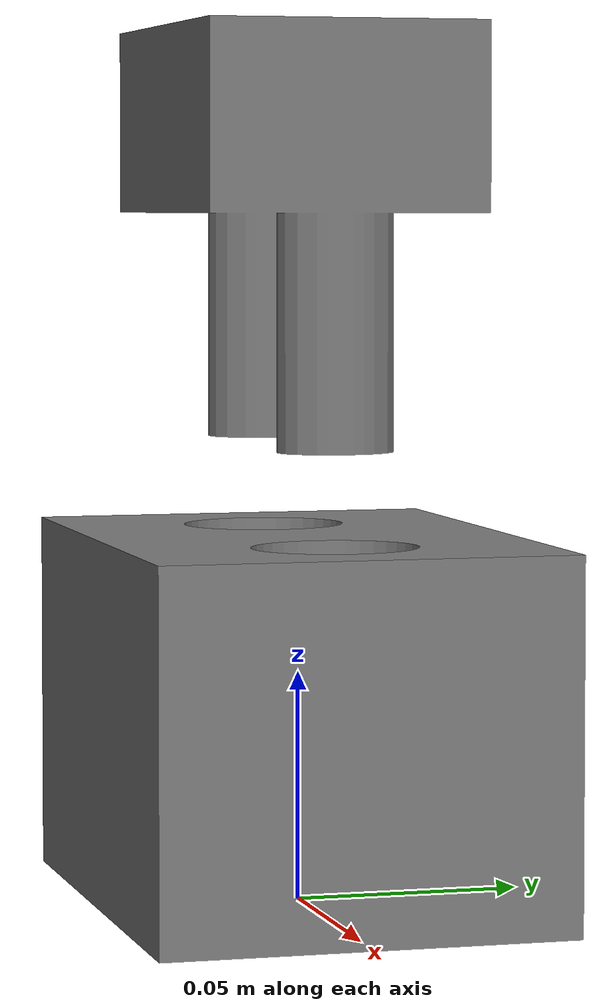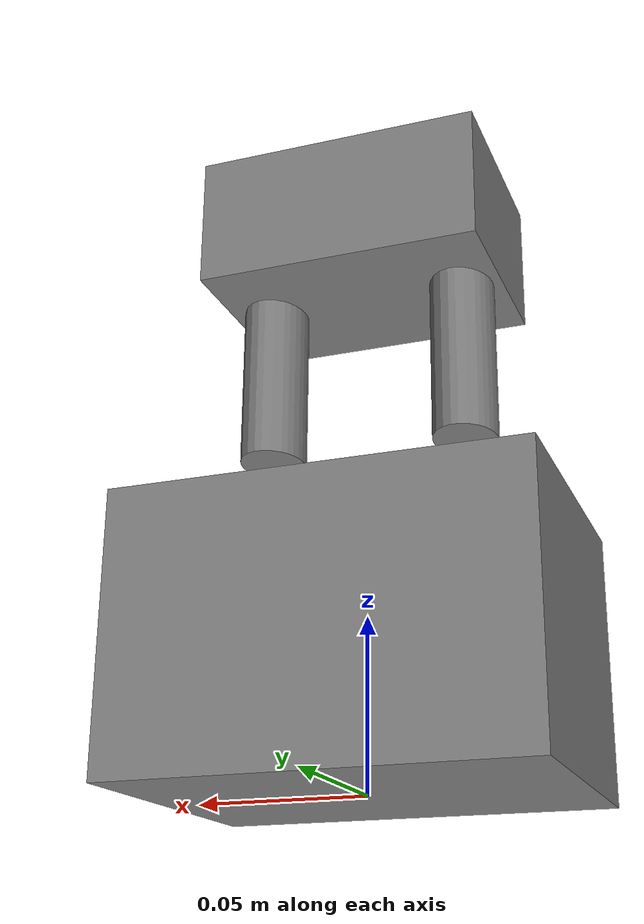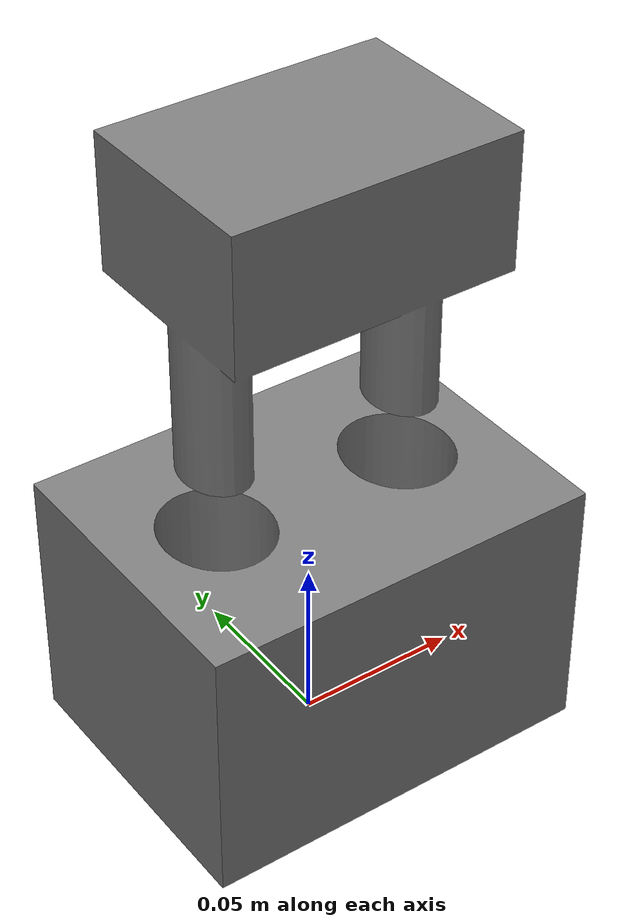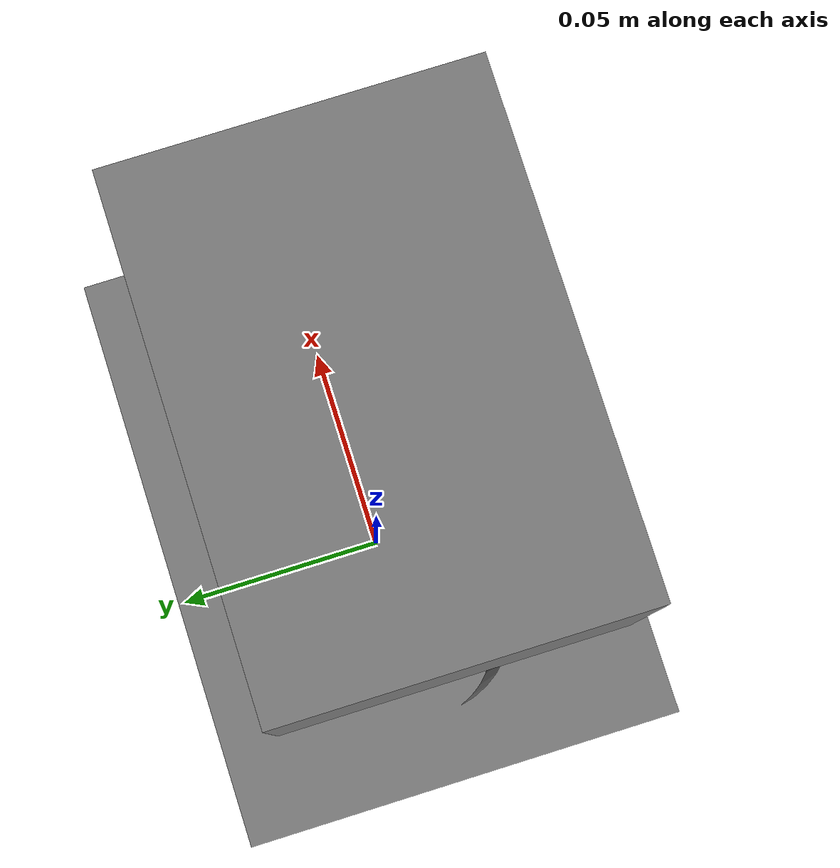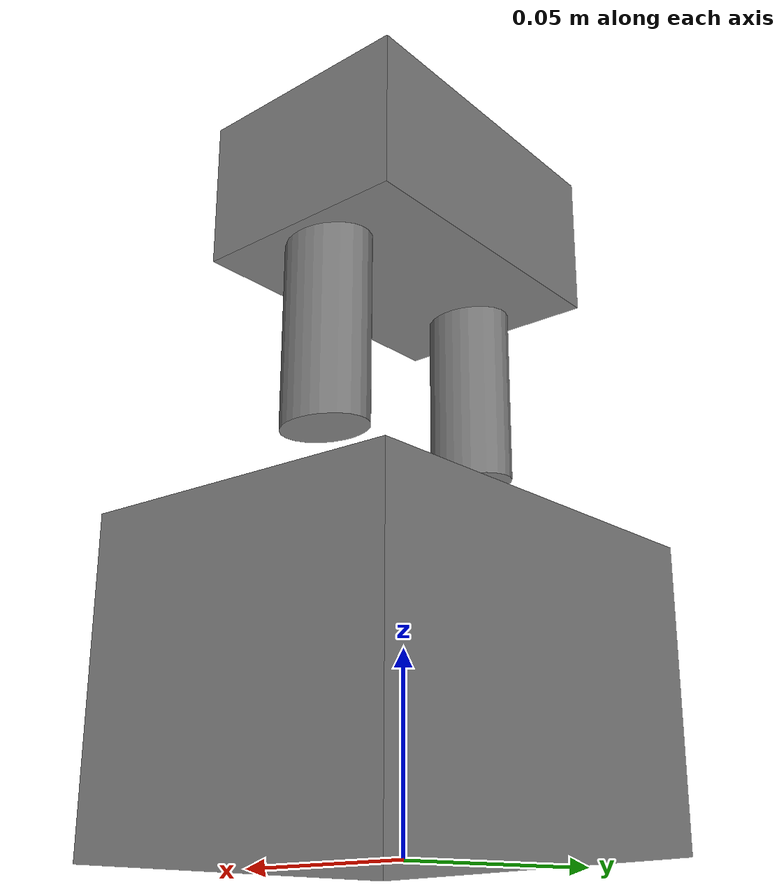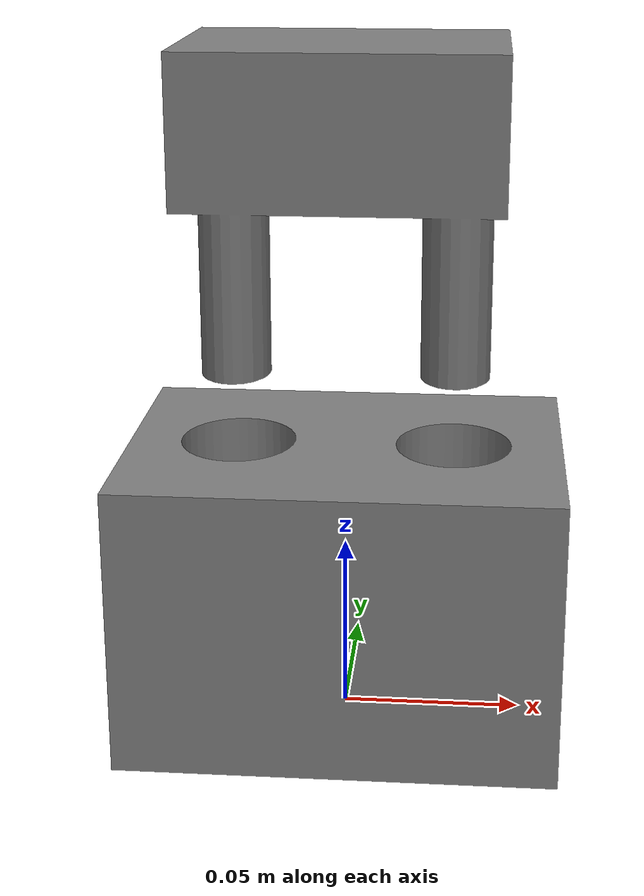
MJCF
<mujoco model="ellipse36">
  <default>
    <default class="visual">
      <geom group="2" type="mesh" contype="0" conaffinity="0"/>
    </default>
    <default class="collision">
      <geom group="3" type="mesh"/>
    </default>
  </default>
  <asset>
    <mesh file="ellipse36.obj"/>
    <mesh file="ellipse36_collision_0.obj"/>
    <mesh file="ellipse36_collision_1.obj"/>
    <mesh file="ellipse36_collision_2.obj"/>
    <mesh file="ellipse36_collision_3.obj"/>
    <mesh file="ellipse36_collision_4.obj"/>
    <mesh file="ellipse36_collision_5.obj"/>
    <mesh file="ellipse36_collision_6.obj"/>
    <mesh file="ellipse36_collision_7.obj"/>
    <mesh file="ellipse36_collision_8.obj"/>
    <mesh file="ellipse36_collision_9.obj"/>
    <mesh file="ellipse36_collision_10.obj"/>
    <mesh file="ellipse36_collision_11.obj"/>
    <mesh file="ellipse36_collision_12.obj"/>
    <mesh file="ellipse36_collision_13.obj"/>
    <mesh file="ellipse36_collision_14.obj"/>
    <mesh file="ellipse36_collision_15.obj"/>
    <mesh file="ellipse36_collision_16.obj"/>
    <mesh file="ellipse36_collision_17.obj"/>
    <mesh file="ellipse36_collision_18.obj"/>
    <mesh file="ellipse36_collision_19.obj"/>
    <mesh file="ellipse36_collision_20.obj"/>
    <mesh file="ellipse36_collision_21.obj"/>
    <mesh file="ellipse36_collision_22.obj"/>
    <mesh file="ellipse36_collision_23.obj"/>
    <mesh file="ellipse36_collision_24.obj"/>
    <mesh file="ellipse36_collision_25.obj"/>
    <mesh file="ellipse36_collision_26.obj"/>
    <mesh file="ellipse36_collision_27.obj"/>
    <mesh file="ellipse36_collision_28.obj"/>
    <mesh file="ellipse36_collision_29.obj"/>
    <mesh file="ellipse36_collision_30.obj"/>
    <mesh file="ellipse36_collision_31.obj"/>
    <mesh file="peg_ellipse36.obj"/>
    <mesh file="peg_ellipse36_collision_0.obj"/>
    <mesh file="peg_ellipse36_collision_1.obj"/>
    <mesh file="peg_ellipse36_collision_2.obj"/>
    <mesh file="peg_ellipse36_collision_3.obj"/>
    <mesh file="peg_ellipse36_collision_4.obj"/>
    <mesh file="peg_ellipse36_collision_5.obj"/>
    <mesh file="peg_ellipse36_collision_6.obj"/>
    <mesh file="peg_ellipse36_collision_7.obj"/>
    <mesh file="peg_ellipse36_collision_8.obj"/>
    <mesh file="peg_ellipse36_collision_9.obj"/>
    <mesh file="peg_ellipse36_collision_10.obj"/>
    <mesh file="peg_ellipse36_collision_11.obj"/>
    <mesh file="peg_ellipse36_collision_12.obj"/>
    <mesh file="peg_ellipse36_collision_13.obj"/>
    <mesh file="peg_ellipse36_collision_14.obj"/>
    <mesh file="peg_ellipse36_collision_15.obj"/>
    <mesh file="peg_ellipse36_collision_16.obj"/>
    <mesh file="peg_ellipse36_collision_17.obj"/>
    <mesh file="peg_ellipse36_collision_18.obj"/>
    <mesh file="peg_ellipse36_collision_19.obj"/>
    <mesh file="peg_ellipse36_collision_20.obj"/>
    <mesh file="peg_ellipse36_collision_21.obj"/>
    <mesh file="peg_ellipse36_collision_22.obj"/>
    <mesh file="peg_ellipse36_collision_23.obj"/>
    <mesh file="peg_ellipse36_collision_24.obj"/>
    <mesh file="peg_ellipse36_collision_25.obj"/>
    <mesh file="peg_ellipse36_collision_26.obj"/>
    <mesh file="peg_ellipse36_collision_27.obj"/>
    <mesh file="peg_ellipse36_collision_28.obj"/>
    <mesh file="peg_ellipse36_collision_29.obj"/>
    <mesh file="peg_ellipse36_collision_30.obj"/>
    <mesh file="peg_ellipse36_collision_31.obj"/>
  </asset>
  <worldbody>
    <body name="ellipse36" quat="0.707107 0.707107 0 0">
      <geom mesh="ellipse36" class="visual"/>
      <geom mesh="ellipse36_collision_0" class="collision"/>
      <geom mesh="ellipse36_collision_1" class="collision"/>
      <geom mesh="ellipse36_collision_2" class="collision"/>
      <geom mesh="ellipse36_collision_3" class="collision"/>
      <geom mesh="ellipse36_collision_4" class="collision"/>
      <geom mesh="ellipse36_collision_5" class="collision"/>
      <geom mesh="ellipse36_collision_6" class="collision"/>
      <geom mesh="ellipse36_collision_7" class="collision"/>
      <geom mesh="ellipse36_collision_8" class="collision"/>
      <geom mesh="ellipse36_collision_9" class="collision"/>
      <geom mesh="ellipse36_collision_10" class="collision"/>
      <geom mesh="ellipse36_collision_11" class="collision"/>
      <geom mesh="ellipse36_collision_12" class="collision"/>
      <geom mesh="ellipse36_collision_13" class="collision"/>
      <geom mesh="ellipse36_collision_14" class="collision"/>
      <geom mesh="ellipse36_collision_15" class="collision"/>
      <geom mesh="ellipse36_collision_16" class="collision"/>
      <geom mesh="ellipse36_collision_17" class="collision"/>
      <geom mesh="ellipse36_collision_18" class="collision"/>
      <geom mesh="ellipse36_collision_19" class="collision"/>
      <geom mesh="ellipse36_collision_20" class="collision"/>
      <geom mesh="ellipse36_collision_21" class="collision"/>
      <geom mesh="ellipse36_collision_22" class="collision"/>
      <geom mesh="ellipse36_collision_23" class="collision"/>
      <geom mesh="ellipse36_collision_24" class="collision"/>
      <geom mesh="ellipse36_collision_25" class="collision"/>
      <geom mesh="ellipse36_collision_26" class="collision"/>
      <geom mesh="ellipse36_collision_27" class="collision"/>
      <geom mesh="ellipse36_collision_28" class="collision"/>
      <geom mesh="ellipse36_collision_29" class="collision"/>
      <geom mesh="ellipse36_collision_30" class="collision"/>
      <geom mesh="ellipse36_collision_31" class="collision"/>
    </body>

    <body name="peg_ellipse36" quat="0.707107 0.707107 0 0" pos='0 0 0.1'>
      <freejoint/>
      <geom mesh="peg_ellipse36" class="visual"/>
      <geom mesh="peg_ellipse36_collision_0" class="collision"/>
      <geom mesh="peg_ellipse36_collision_1" class="collision"/>
      <geom mesh="peg_ellipse36_collision_2" class="collision"/>
      <geom mesh="peg_ellipse36_collision_3" class="collision"/>
      <geom mesh="peg_ellipse36_collision_4" class="collision"/>
      <geom mesh="peg_ellipse36_collision_5" class="collision"/>
      <geom mesh="peg_ellipse36_collision_6" class="collision"/>
      <geom mesh="peg_ellipse36_collision_7" class="collision"/>
      <geom mesh="peg_ellipse36_collision_8" class="collision"/>
      <geom mesh="peg_ellipse36_collision_9" class="collision"/>
      <geom mesh="peg_ellipse36_collision_10" class="collision"/>
      <geom mesh="peg_ellipse36_collision_11" class="collision"/>
      <geom mesh="peg_ellipse36_collision_12" class="collision"/>
      <geom mesh="peg_ellipse36_collision_13" class="collision"/>
      <geom mesh="peg_ellipse36_collision_14" class="collision"/>
      <geom mesh="peg_ellipse36_collision_15" class="collision"/>
      <geom mesh="peg_ellipse36_collision_16" class="collision"/>
      <geom mesh="peg_ellipse36_collision_17" class="collision"/>
      <geom mesh="peg_ellipse36_collision_18" class="collision"/>
      <geom mesh="peg_ellipse36_collision_19" class="collision"/>
      <geom mesh="peg_ellipse36_collision_20" class="collision"/>
      <geom mesh="peg_ellipse36_collision_21" class="collision"/>
      <geom mesh="peg_ellipse36_collision_22" class="collision"/>
      <geom mesh="peg_ellipse36_collision_23" class="collision"/>
      <geom mesh="peg_ellipse36_collision_24" class="collision"/>
      <geom mesh="peg_ellipse36_collision_25" class="collision"/>
      <geom mesh="peg_ellipse36_collision_26" class="collision"/>
      <geom mesh="peg_ellipse36_collision_27" class="collision"/>
      <geom mesh="peg_ellipse36_collision_28" class="collision"/>
      <geom mesh="peg_ellipse36_collision_29" class="collision"/>
      <geom mesh="peg_ellipse36_collision_30" class="collision"/>
      <geom mesh="peg_ellipse36_collision_31" class="collision"/>
    </body>
  </worldbody>
</mujoco>
